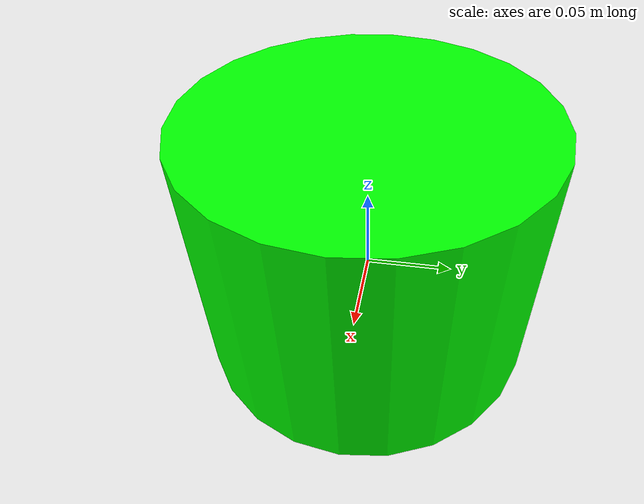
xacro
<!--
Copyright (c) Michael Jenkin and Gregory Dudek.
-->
<?xml version="1.0"?>

<robot name="$(arg name)" xmlns:xacro="http://www.ros.org/wiki/xacro">

  <xacro:arg name="robot_name" default="block_bot" />
  <xacro:property name="robot_name" value="$(arg name)" />

  <material name="red">
    <color rgba="1 0 0 1"/>
  </material>
  <material name="green">
    <color rgba="0 1 0 1"/>
  </material>

  <link name="base_footprint">
  </link>

  <gazebo reference="base_link">
    <material>Gazebo/Green</material>
  </gazebo>
  <link name="base_link">
    <visual>
      <geometry>
        <cylinder length="0.15" radius="0.10" />
      </geometry>
      <material name="green"/>
    </visual>
    <collision>
      <geometry>
        <cylinder length="0.1" radius="0.10" />
      </geometry>
    </collision>
    <inertial>
      <mass value="4.5" />
      <!-- https://amesweb.info/inertia/mass-moment-of-inertia-cylinder.aspx -->
      <inertia ixx="0.012188" iyy="0.012188" izz="0.0225" ixy="0" ixz="0" iyz="0" />
    </inertial>
  </link>

  <joint name="base_joint" type="fixed">
    <origin xyz="0.0 0.0 0.025" rpy="0.0 0.0 0.0" />
    <parent link="base_footprint" />
    <child link="base_link" />
    <axis xyz="0 0 1" />
  </joint>

  <gazebo>
    <plugin name="object_controller" filename="libgazebo_ros_planar_move.so">
      <ros>
          <namespace>/${robot_name}</namespace>
        </ros>
      <commandTopic>${robot_name}/cmd_vel</commandTopic>
      <odometryTopic>${robot_name}/odom</odometryTopic>
      <odometryFrame>${robot_name}/odom</odometryFrame>
      <odometryRate>20.0</odometryRate>
      <robotBaseFrame>${robot_name}/base_footprint</robotBaseFrame>
    </plugin>
  </gazebo>

  <gazebo>
    <plugin name="gazebo_ros_state" filename="libgazebo_ros_state.so">
      <ros>
        <namespace>/gazebo</namespace>
      </ros>

      <update_rate>1.0</update_rate>
    </plugin>
  </gazebo>

</robot>
